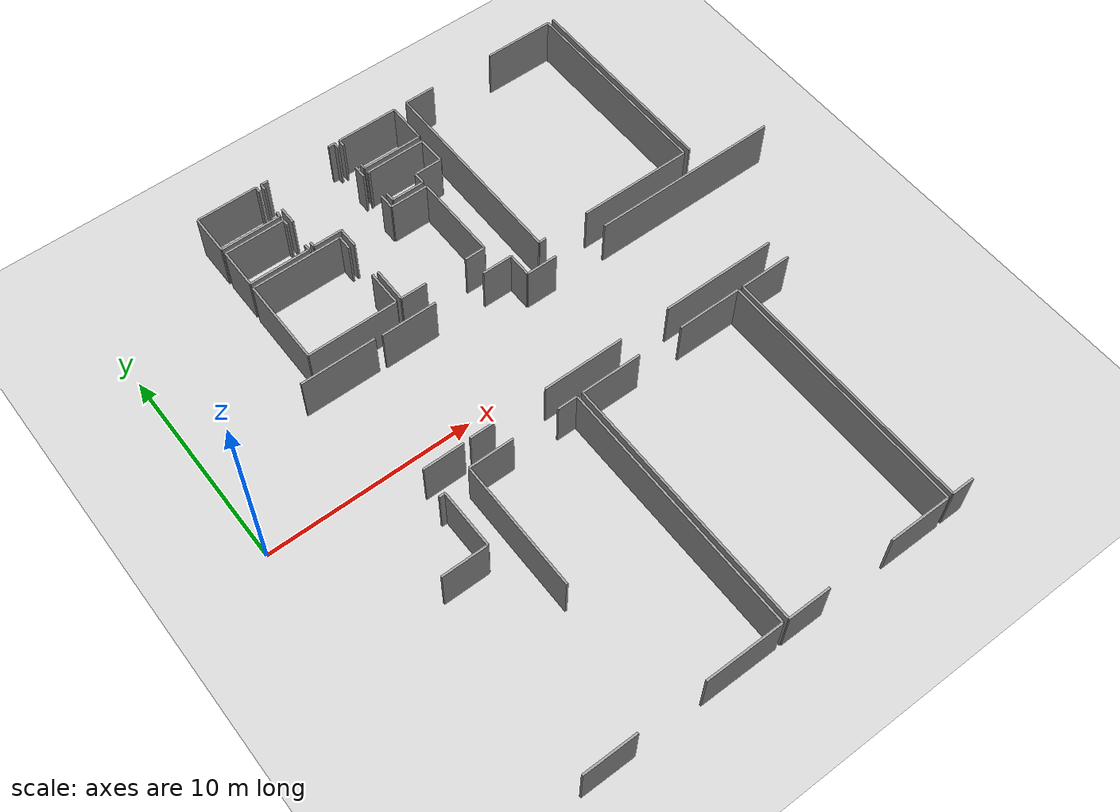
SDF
<sdf version="1.6">
 <world name="default">
  <model name="ground_plane">
   <static>1</static>
   <link name="link">
    <collision name="collision">
     <geometry><plane><normal>0 0 1</normal><size>100 100</size></plane></geometry>
     <surface><friction><ode><mu>100</mu><mu2>50</mu2></ode></friction></surface>
    </collision>
    <visual name="visual">
     <cast_shadows>0</cast_shadows>
     <geometry><plane><normal>0 0 1</normal><size>100 100</size></plane></geometry>
     <material>
      <script><uri>file://media/materials/scripts/gazebo.material</uri><name>Gazebo/Grey</name></script>
     </material>
    </visual>
   </link>
  </model>
  <model name="50056459">
   <static>1</static>
   <link name="Wall_125">
    <collision name="Wall_125_Collision">
     <geometry><box><size>1.97142300558 0.1 2.5</size></box></geometry>
     <pose>0.985711502791 0 1.25 0 0 0</pose>
    </collision>
    <visual name="Wall_125_Visual">
     <pose>0.985711502791 0 1.25 0 0 0</pose>
     <geometry><box><size>1.97142300558 0.1 2.5</size></box></geometry>
     <material>
      <script><uri>file://media/materials/scripts/gazebo.material</uri><name>Gazebo/Grey</name></script>
      <ambient>1 1 1 1</ambient>
     </material>
    </visual>
    <pose>63.5869125158 -16.9390261462 0 0 0 3.14159265359</pose>
   </link>
   <link name="Wall_138">
    <collision name="Wall_138_Collision">
     <geometry><box><size>3.64691234638 0.1 2.5</size></box></geometry>
     <pose>1.82345617319 0 1.25 0 0 0</pose>
    </collision>
    <visual name="Wall_138_Visual">
     <pose>1.82345617319 0 1.25 0 0 0</pose>
     <geometry><box><size>3.64691234638 0.1 2.5</size></box></geometry>
     <material>
      <script><uri>file://media/materials/scripts/gazebo.material</uri><name>Gazebo/Grey</name></script>
      <ambient>1 1 1 1</ambient>
     </material>
    </visual>
    <pose>59.9410165415 -10.7340747203 0 0 0 0.0</pose>
   </link>
   <link name="Wall_150">
    <collision name="Wall_150_Collision">
     <geometry><box><size>2.20383341662 0.1 2.5</size></box></geometry>
     <pose>1.10191670831 0 1.25 0 0 0</pose>
    </collision>
    <visual name="Wall_150_Visual">
     <pose>1.10191670831 0 1.25 0 0 0</pose>
     <geometry><box><size>2.20383341662 0.1 2.5</size></box></geometry>
     <material>
      <script><uri>file://media/materials/scripts/gazebo.material</uri><name>Gazebo/Grey</name></script>
      <ambient>1 1 1 1</ambient>
     </material>
    </visual>
    <pose>61.7030669027 -21.0998839642 0 0 0 3.14159265359</pose>
   </link>
   <link name="Wall_153">
    <collision name="Wall_153_Collision">
     <geometry><box><size>0.289496641737 0.1 2.5</size></box></geometry>
     <pose>0.144748320869 0 1.25 0 0 0</pose>
    </collision>
    <visual name="Wall_153_Visual">
     <pose>0.144748320869 0 1.25 0 0 0</pose>
     <geometry><box><size>0.289496641737 0.1 2.5</size></box></geometry>
     <material>
      <script><uri>file://media/materials/scripts/gazebo.material</uri><name>Gazebo/Grey</name></script>
      <ambient>1 1 1 1</ambient>
     </material>
    </visual>
    <pose>61.4039147264 -18.297746195 0 0 0 0.0</pose>
   </link>
   <link name="Wall_154">
    <collision name="Wall_154_Collision">
     <geometry><box><size>2.80215440458 0.1 2.5</size></box></geometry>
     <pose>1.40107720229 0 1.25 0 0 0</pose>
    </collision>
    <visual name="Wall_154_Visual">
     <pose>1.40107720229 0 1.25 0 0 0</pose>
     <geometry><box><size>2.80215440458 0.1 2.5</size></box></geometry>
     <material>
      <script><uri>file://media/materials/scripts/gazebo.material</uri><name>Gazebo/Grey</name></script>
      <ambient>1 1 1 1</ambient>
     </material>
    </visual>
    <pose>61.6934113681 -18.297746195 0 0 0 -1.56735056604</pose>
   </link>
   <link name="Wall_168">
    <collision name="Wall_168_Collision">
     <geometry><box><size>5.66136176916 0.1 2.5</size></box></geometry>
     <pose>2.83068088458 0 1.25 0 0 0</pose>
    </collision>
    <visual name="Wall_168_Visual">
     <pose>2.83068088458 0 1.25 0 0 0</pose>
     <geometry><box><size>5.66136176916 0.1 2.5</size></box></geometry>
     <material>
      <script><uri>file://media/materials/scripts/gazebo.material</uri><name>Gazebo/Grey</name></script>
      <ambient>1 1 1 1</ambient>
     </material>
    </visual>
    <pose>79.8093963597 -16.9166659609 0 0 0 3.14159265359</pose>
   </link>
   <link name="Wall_169">
    <collision name="Wall_169_Collision">
     <geometry><box><size>3.96249587099 0.1 2.5</size></box></geometry>
     <pose>1.98124793549 0 1.25 0 0 0</pose>
    </collision>
    <visual name="Wall_169_Visual">
     <pose>1.98124793549 0 1.25 0 0 0</pose>
     <geometry><box><size>3.96249587099 0.1 2.5</size></box></geometry>
     <material>
      <script><uri>file://media/materials/scripts/gazebo.material</uri><name>Gazebo/Grey</name></script>
      <ambient>1 1 1 1</ambient>
     </material>
    </visual>
    <pose>71.6458959743 -16.9166659609 0 0 0 3.14159265359</pose>
   </link>
   <link name="Wall_170">
    <collision name="Wall_170_Collision">
     <geometry><box><size>1.20287633293 0.1 2.5</size></box></geometry>
     <pose>0.601438166465 0 1.25 0 0 0</pose>
    </collision>
    <visual name="Wall_170_Visual">
     <pose>0.601438166465 0 1.25 0 0 0</pose>
     <geometry><box><size>1.20287633293 0.1 2.5</size></box></geometry>
     <material>
      <script><uri>file://media/materials/scripts/gazebo.material</uri><name>Gazebo/Grey</name></script>
      <ambient>1 1 1 1</ambient>
     </material>
    </visual>
    <pose>65.1128257684 -16.9166659609 0 0 0 3.14159265359</pose>
   </link>
   <link name="Wall_171">
    <collision name="Wall_171_Collision">
     <geometry><box><size>2.7065987956 0.1 2.5</size></box></geometry>
     <pose>1.3532993978 0 1.25 0 0 0</pose>
    </collision>
    <visual name="Wall_171_Visual">
     <pose>1.3532993978 0 1.25 0 0 0</pose>
     <geometry><box><size>2.7065987956 0.1 2.5</size></box></geometry>
     <material>
      <script><uri>file://media/materials/scripts/gazebo.material</uri><name>Gazebo/Grey</name></script>
      <ambient>1 1 1 1</ambient>
     </material>
    </visual>
    <pose>63.9099494355 -10.7887894162 0 0 0 0.0</pose>
   </link>
   <link name="Wall_172">
    <collision name="Wall_172_Collision">
     <geometry><box><size>1.48136227735 0.1 2.5</size></box></geometry>
     <pose>0.740681138675 0 1.25 0 0 0</pose>
    </collision>
    <visual name="Wall_172_Visual">
     <pose>0.740681138675 0 1.25 0 0 0</pose>
     <geometry><box><size>1.48136227735 0.1 2.5</size></box></geometry>
     <material>
      <script><uri>file://media/materials/scripts/gazebo.material</uri><name>Gazebo/Grey</name></script>
      <ambient>1 1 1 1</ambient>
     </material>
    </visual>
    <pose>69.1002227549 -10.7887894162 0 0 0 0.0</pose>
   </link>
   <link name="Wall_173">
    <collision name="Wall_173_Collision">
     <geometry><box><size>1.16035810176 0.1 2.5</size></box></geometry>
     <pose>0.580179050878 0 1.25 0 0 0</pose>
    </collision>
    <visual name="Wall_173_Visual">
     <pose>0.580179050878 0 1.25 0 0 0</pose>
     <geometry><box><size>1.16035810176 0.1 2.5</size></box></geometry>
     <material>
      <script><uri>file://media/materials/scripts/gazebo.material</uri><name>Gazebo/Grey</name></script>
      <ambient>1 1 1 1</ambient>
     </material>
    </visual>
    <pose>70.5815850322 -10.7887894162 0 0 0 -1.57079632679</pose>
   </link>
   <link name="Wall_174">
    <collision name="Wall_174_Collision">
     <geometry><box><size>1.51473315999 0.1 2.5</size></box></geometry>
     <pose>0.757366579993 0 1.25 0 0 0</pose>
    </collision>
    <visual name="Wall_174_Visual">
     <pose>0.757366579993 0 1.25 0 0 0</pose>
     <geometry><box><size>1.51473315999 0.1 2.5</size></box></geometry>
     <material>
      <script><uri>file://media/materials/scripts/gazebo.material</uri><name>Gazebo/Grey</name></script>
      <ambient>1 1 1 1</ambient>
     </material>
    </visual>
    <pose>70.5815850322 -11.9491475179 0 0 0 0.0</pose>
   </link>
   <link name="Wall_175">
    <collision name="Wall_175_Collision">
     <geometry><box><size>9.24898574538 0.1 2.5</size></box></geometry>
     <pose>4.62449287269 0 1.25 0 0 0</pose>
    </collision>
    <visual name="Wall_175_Visual">
     <pose>4.62449287269 0 1.25 0 0 0</pose>
     <geometry><box><size>9.24898574538 0.1 2.5</size></box></geometry>
     <material>
      <script><uri>file://media/materials/scripts/gazebo.material</uri><name>Gazebo/Grey</name></script>
      <ambient>1 1 1 1</ambient>
     </material>
    </visual>
    <pose>74.7465083385 -11.9491475179 0 0 0 0.0</pose>
   </link>
   <link name="Wall_188">
    <collision name="Wall_188_Collision">
     <geometry><box><size>1.00722471139 0.1 2.5</size></box></geometry>
     <pose>0.503612355696 0 1.25 0 0 0</pose>
    </collision>
    <visual name="Wall_188_Visual">
     <pose>0.503612355696 0 1.25 0 0 0</pose>
     <geometry><box><size>1.00722471139 0.1 2.5</size></box></geometry>
     <material>
      <script><uri>file://media/materials/scripts/gazebo.material</uri><name>Gazebo/Grey</name></script>
      <ambient>1 1 1 1</ambient>
     </material>
    </visual>
    <pose>69.9317844952 -9.74616107803 0 0 0 3.14159265359</pose>
   </link>
   <link name="Wall_189">
    <collision name="Wall_189_Collision">
     <geometry><box><size>1.27605512124 0.1 2.5</size></box></geometry>
     <pose>0.638027560622 0 1.25 0 0 0</pose>
    </collision>
    <visual name="Wall_189_Visual">
     <pose>0.638027560622 0 1.25 0 0 0</pose>
     <geometry><box><size>1.27605512124 0.1 2.5</size></box></geometry>
     <material>
      <script><uri>file://media/materials/scripts/gazebo.material</uri><name>Gazebo/Grey</name></script>
      <ambient>1 1 1 1</ambient>
     </material>
    </visual>
    <pose>66.8726739902 -9.74616107803 0 0 0 3.14159265359</pose>
   </link>
   <link name="Wall_190">
    <collision name="Wall_190_Collision">
     <geometry><box><size>1.71919333938 0.1 2.5</size></box></geometry>
     <pose>0.859596669688 0 1.25 0 0 0</pose>
    </collision>
    <visual name="Wall_190_Visual">
     <pose>0.859596669688 0 1.25 0 0 0</pose>
     <geometry><box><size>1.71919333938 0.1 2.5</size></box></geometry>
     <material>
      <script><uri>file://media/materials/scripts/gazebo.material</uri><name>Gazebo/Grey</name></script>
      <ambient>1 1 1 1</ambient>
     </material>
    </visual>
    <pose>65.5966188689 -9.74616107803 0 0 0 1.57079632679</pose>
   </link>
   <link name="Wall_191">
    <collision name="Wall_191_Collision">
     <geometry><box><size>0.996044618733 0.1 2.5</size></box></geometry>
     <pose>0.498022309367 0 1.25 0 0 0</pose>
    </collision>
    <visual name="Wall_191_Visual">
     <pose>0.498022309367 0 1.25 0 0 0</pose>
     <geometry><box><size>0.996044618733 0.1 2.5</size></box></geometry>
     <material>
      <script><uri>file://media/materials/scripts/gazebo.material</uri><name>Gazebo/Grey</name></script>
      <ambient>1 1 1 1</ambient>
     </material>
    </visual>
    <pose>65.5966188689 -6.25424547079 0 0 0 1.57079632679</pose>
   </link>
   <link name="Wall_192">
    <collision name="Wall_192_Collision">
     <geometry><box><size>1.42258209322 0.1 2.5</size></box></geometry>
     <pose>0.711291046609 0 1.25 0 0 0</pose>
    </collision>
    <visual name="Wall_192_Visual">
     <pose>0.711291046609 0 1.25 0 0 0</pose>
     <geometry><box><size>1.42258209322 0.1 2.5</size></box></geometry>
     <material>
      <script><uri>file://media/materials/scripts/gazebo.material</uri><name>Gazebo/Grey</name></script>
      <ambient>1 1 1 1</ambient>
     </material>
    </visual>
    <pose>65.5966188689 -5.25820085206 0 0 0 3.14159265359</pose>
   </link>
   <link name="Wall_193">
    <collision name="Wall_193_Collision">
     <geometry><box><size>0.256295154446 0.1 2.5</size></box></geometry>
     <pose>0.128147577223 0 1.25 0 0 0</pose>
    </collision>
    <visual name="Wall_193_Visual">
     <pose>0.128147577223 0 1.25 0 0 0</pose>
     <geometry><box><size>0.256295154446 0.1 2.5</size></box></geometry>
     <material>
      <script><uri>file://media/materials/scripts/gazebo.material</uri><name>Gazebo/Grey</name></script>
      <ambient>1 1 1 1</ambient>
     </material>
    </visual>
    <pose>64.1740367757 -5.25820085206 0 0 0 1.57079632679</pose>
   </link>
   <link name="Wall_194">
    <collision name="Wall_194_Collision">
     <geometry><box><size>0.867473553152 0.1 2.5</size></box></geometry>
     <pose>0.433736776576 0 1.25 0 0 0</pose>
    </collision>
    <visual name="Wall_194_Visual">
     <pose>0.433736776576 0 1.25 0 0 0</pose>
     <geometry><box><size>0.867473553152 0.1 2.5</size></box></geometry>
     <material>
      <script><uri>file://media/materials/scripts/gazebo.material</uri><name>Gazebo/Grey</name></script>
      <ambient>1 1 1 1</ambient>
     </material>
    </visual>
    <pose>64.1740367757 -3.62218062625 0 0 0 1.57079632679</pose>
   </link>
   <link name="Wall_195">
    <collision name="Wall_195_Collision">
     <geometry><box><size>0.322189942998 0.1 2.5</size></box></geometry>
     <pose>0.161094971499 0 1.25 0 0 0</pose>
    </collision>
    <visual name="Wall_195_Visual">
     <pose>0.161094971499 0 1.25 0 0 0</pose>
     <geometry><box><size>0.322189942998 0.1 2.5</size></box></geometry>
     <material>
      <script><uri>file://media/materials/scripts/gazebo.material</uri><name>Gazebo/Grey</name></script>
      <ambient>1 1 1 1</ambient>
     </material>
    </visual>
    <pose>64.1740367757 -1.37684535052 0 0 0 1.57079632679</pose>
   </link>
   <link name="Wall_196">
    <collision name="Wall_196_Collision">
     <geometry><box><size>0.336757942524 0.1 2.5</size></box></geometry>
     <pose>0.168378971262 0 1.25 0 0 0</pose>
    </collision>
    <visual name="Wall_196_Visual">
     <pose>0.168378971262 0 1.25 0 0 0</pose>
     <geometry><box><size>0.336757942524 0.1 2.5</size></box></geometry>
     <material>
      <script><uri>file://media/materials/scripts/gazebo.material</uri><name>Gazebo/Grey</name></script>
      <ambient>1 1 1 1</ambient>
     </material>
    </visual>
    <pose>64.1740367757 -1.05465540752 0 0 0 0.0</pose>
   </link>
   <link name="Wall_197">
    <collision name="Wall_197_Collision">
     <geometry><box><size>0.329473942761 0.1 2.5</size></box></geometry>
     <pose>0.164736971381 0 1.25 0 0 0</pose>
    </collision>
    <visual name="Wall_197_Visual">
     <pose>0.164736971381 0 1.25 0 0 0</pose>
     <geometry><box><size>0.329473942761 0.1 2.5</size></box></geometry>
     <material>
      <script><uri>file://media/materials/scripts/gazebo.material</uri><name>Gazebo/Grey</name></script>
      <ambient>1 1 1 1</ambient>
     </material>
    </visual>
    <pose>67.7038969399 -1.05465540752 0 0 0 0.0</pose>
   </link>
   <link name="Wall_198">
    <collision name="Wall_198_Collision">
     <geometry><box><size>0.307621943473 0.1 2.5</size></box></geometry>
     <pose>0.153810971736 0 1.25 0 0 0</pose>
    </collision>
    <visual name="Wall_198_Visual">
     <pose>0.153810971736 0 1.25 0 0 0</pose>
     <geometry><box><size>0.307621943473 0.1 2.5</size></box></geometry>
     <material>
      <script><uri>file://media/materials/scripts/gazebo.material</uri><name>Gazebo/Grey</name></script>
      <ambient>1 1 1 1</ambient>
     </material>
    </visual>
    <pose>68.0333708826 -1.05465540752 0 0 0 -1.57079632679</pose>
   </link>
   <link name="Wall_199">
    <collision name="Wall_199_Collision">
     <geometry><box><size>0.648445374237 0.1 2.5</size></box></geometry>
     <pose>0.324222687118 0 1.25 0 0 0</pose>
    </collision>
    <visual name="Wall_199_Visual">
     <pose>0.324222687118 0 1.25 0 0 0</pose>
     <geometry><box><size>0.648445374237 0.1 2.5</size></box></geometry>
     <material>
      <script><uri>file://media/materials/scripts/gazebo.material</uri><name>Gazebo/Grey</name></script>
      <ambient>1 1 1 1</ambient>
     </material>
    </visual>
    <pose>68.0333708826 -2.75487646845 0 0 0 -1.57079632679</pose>
   </link>
   <link name="Wall_200">
    <collision name="Wall_200_Collision">
     <geometry><box><size>0.758552347396 0.1 2.5</size></box></geometry>
     <pose>0.379276173698 0 1.25 0 0 0</pose>
    </collision>
    <visual name="Wall_200_Visual">
     <pose>0.379276173698 0 1.25 0 0 0</pose>
     <geometry><box><size>0.758552347396 0.1 2.5</size></box></geometry>
     <material>
      <script><uri>file://media/materials/scripts/gazebo.material</uri><name>Gazebo/Grey</name></script>
      <ambient>1 1 1 1</ambient>
     </material>
    </visual>
    <pose>68.0333708826 -4.76814012383 0 0 0 -1.57079632679</pose>
   </link>
   <link name="Wall_201">
    <collision name="Wall_201_Collision">
     <geometry><box><size>1.88215165965 0.1 2.5</size></box></geometry>
     <pose>0.941075829825 0 1.25 0 0 0</pose>
    </collision>
    <visual name="Wall_201_Visual">
     <pose>0.941075829825 0 1.25 0 0 0</pose>
     <geometry><box><size>1.88215165965 0.1 2.5</size></box></geometry>
     <material>
      <script><uri>file://media/materials/scripts/gazebo.material</uri><name>Gazebo/Grey</name></script>
      <ambient>1 1 1 1</ambient>
     </material>
    </visual>
    <pose>68.0333708826 -5.52669247122 0 0 0 0.0</pose>
   </link>
   <link name="Wall_202">
    <collision name="Wall_202_Collision">
     <geometry><box><size>4.21949994371 0.1 2.5</size></box></geometry>
     <pose>2.10974997185 0 1.25 0 0 0</pose>
    </collision>
    <visual name="Wall_202_Visual">
     <pose>2.10974997185 0 1.25 0 0 0</pose>
     <geometry><box><size>4.21949994371 0.1 2.5</size></box></geometry>
     <material>
      <script><uri>file://media/materials/scripts/gazebo.material</uri><name>Gazebo/Grey</name></script>
      <ambient>1 1 1 1</ambient>
     </material>
    </visual>
    <pose>69.9155225423 -5.52669247122 0 0 0 -1.56694231721</pose>
   </link>
   <link name="Wall_203">
    <collision name="Wall_203_Collision">
     <geometry><box><size>4.38733939204 0.1 2.5</size></box></geometry>
     <pose>2.19366969602 0 1.25 0 0 0</pose>
    </collision>
    <visual name="Wall_203_Visual">
     <pose>2.19366969602 0 1.25 0 0 0</pose>
     <geometry><box><size>4.38733939204 0.1 2.5</size></box></geometry>
     <material>
      <script><uri>file://media/materials/scripts/gazebo.material</uri><name>Gazebo/Grey</name></script>
      <ambient>1 1 1 1</ambient>
     </material>
    </visual>
    <pose>65.3281272498 -9.75920451947 0 0 0 3.14159265359</pose>
   </link>
   <link name="Wall_204">
    <collision name="Wall_204_Collision">
     <geometry><box><size>4.21794404872 0.1 2.5</size></box></geometry>
     <pose>2.10897202436 0 1.25 0 0 0</pose>
    </collision>
    <visual name="Wall_204_Visual">
     <pose>2.10897202436 0 1.25 0 0 0</pose>
     <geometry><box><size>4.21794404872 0.1 2.5</size></box></geometry>
     <material>
      <script><uri>file://media/materials/scripts/gazebo.material</uri><name>Gazebo/Grey</name></script>
      <ambient>1 1 1 1</ambient>
     </material>
    </visual>
    <pose>60.9407878577 -9.75920451947 0 0 0 1.57079632679</pose>
   </link>
   <link name="Wall_205">
    <collision name="Wall_205_Collision">
     <geometry><box><size>4.38733939204 0.1 2.5</size></box></geometry>
     <pose>2.19366969602 0 1.25 0 0 0</pose>
    </collision>
    <visual name="Wall_205_Visual">
     <pose>2.19366969602 0 1.25 0 0 0</pose>
     <geometry><box><size>4.38733939204 0.1 2.5</size></box></geometry>
     <material>
      <script><uri>file://media/materials/scripts/gazebo.material</uri><name>Gazebo/Grey</name></script>
      <ambient>1 1 1 1</ambient>
     </material>
    </visual>
    <pose>60.9407878577 -5.54126047075 0 0 0 0.0</pose>
   </link>
   <link name="Wall_206">
    <collision name="Wall_206_Collision">
     <geometry><box><size>0.711460441952 0.1 2.5</size></box></geometry>
     <pose>0.355730220976 0 1.25 0 0 0</pose>
    </collision>
    <visual name="Wall_206_Visual">
     <pose>0.355730220976 0 1.25 0 0 0</pose>
     <geometry><box><size>0.711460441952 0.1 2.5</size></box></geometry>
     <material>
      <script><uri>file://media/materials/scripts/gazebo.material</uri><name>Gazebo/Grey</name></script>
      <ambient>1 1 1 1</ambient>
     </material>
    </visual>
    <pose>65.3281272498 -5.54126047075 0 0 0 -1.57079632679</pose>
   </link>
   <link name="Wall_207">
    <collision name="Wall_207_Collision">
     <geometry><box><size>1.75629091956 0.1 2.5</size></box></geometry>
     <pose>0.878145459781 0 1.25 0 0 0</pose>
    </collision>
    <visual name="Wall_207_Visual">
     <pose>0.878145459781 0 1.25 0 0 0</pose>
     <geometry><box><size>1.75629091956 0.1 2.5</size></box></geometry>
     <material>
      <script><uri>file://media/materials/scripts/gazebo.material</uri><name>Gazebo/Grey</name></script>
      <ambient>1 1 1 1</ambient>
     </material>
    </visual>
    <pose>65.3281272498 -8.00291359991 0 0 0 -1.57079632679</pose>
   </link>
   <link name="Wall_208">
    <collision name="Wall_208_Collision">
     <geometry><box><size>2.95476297357 0.1 2.5</size></box></geometry>
     <pose>1.47738148678 0 1.25 0 0 0</pose>
    </collision>
    <visual name="Wall_208_Visual">
     <pose>1.47738148678 0 1.25 0 0 0</pose>
     <geometry><box><size>2.95476297357 0.1 2.5</size></box></geometry>
     <material>
      <script><uri>file://media/materials/scripts/gazebo.material</uri><name>Gazebo/Grey</name></script>
      <ambient>1 1 1 1</ambient>
     </material>
    </visual>
    <pose>63.9160476678 -5.27666494448 0 0 0 3.14159265359</pose>
   </link>
   <link name="Wall_209">
    <collision name="Wall_209_Collision">
     <geometry><box><size>1.98040095878 0.1 2.5</size></box></geometry>
     <pose>0.990200479389 0 1.25 0 0 0</pose>
    </collision>
    <visual name="Wall_209_Visual">
     <pose>0.990200479389 0 1.25 0 0 0</pose>
     <geometry><box><size>1.98040095878 0.1 2.5</size></box></geometry>
     <material>
      <script><uri>file://media/materials/scripts/gazebo.material</uri><name>Gazebo/Grey</name></script>
      <ambient>1 1 1 1</ambient>
     </material>
    </visual>
    <pose>60.9612846943 -5.27666494448 0 0 0 1.57079632679</pose>
   </link>
   <link name="Wall_210">
    <collision name="Wall_210_Collision">
     <geometry><box><size>2.94205832282 0.1 2.5</size></box></geometry>
     <pose>1.47102916141 0 1.25 0 0 0</pose>
    </collision>
    <visual name="Wall_210_Visual">
     <pose>1.47102916141 0 1.25 0 0 0</pose>
     <geometry><box><size>2.94205832282 0.1 2.5</size></box></geometry>
     <material>
      <script><uri>file://media/materials/scripts/gazebo.material</uri><name>Gazebo/Grey</name></script>
      <ambient>1 1 1 1</ambient>
     </material>
    </visual>
    <pose>60.9612846943 -3.2962639857 0 0 0 0.0</pose>
   </link>
   <link name="Wall_211">
    <collision name="Wall_211_Collision">
     <geometry><box><size>0.305589199353 0.1 2.5</size></box></geometry>
     <pose>0.152794599676 0 1.25 0 0 0</pose>
    </collision>
    <visual name="Wall_211_Visual">
     <pose>0.152794599676 0 1.25 0 0 0</pose>
     <geometry><box><size>0.305589199353 0.1 2.5</size></box></geometry>
     <material>
      <script><uri>file://media/materials/scripts/gazebo.material</uri><name>Gazebo/Grey</name></script>
      <ambient>1 1 1 1</ambient>
     </material>
    </visual>
    <pose>63.9033430171 -3.2962639857 0 0 0 -1.57079632679</pose>
   </link>
   <link name="Wall_212">
    <collision name="Wall_212_Collision">
     <geometry><box><size>0.296883208514 0.1 2.5</size></box></geometry>
     <pose>0.148441604257 0 1.25 0 0 0</pose>
    </collision>
    <visual name="Wall_212_Visual">
     <pose>0.148441604257 0 1.25 0 0 0</pose>
     <geometry><box><size>0.296883208514 0.1 2.5</size></box></geometry>
     <material>
      <script><uri>file://media/materials/scripts/gazebo.material</uri><name>Gazebo/Grey</name></script>
      <ambient>1 1 1 1</ambient>
     </material>
    </visual>
    <pose>63.9033430171 -4.98005369832 0 0 0 -1.52798982509</pose>
   </link>
   <link name="Wall_213">
    <collision name="Wall_213_Collision">
     <geometry><box><size>2.95611813631 0.1 2.5</size></box></geometry>
     <pose>1.47805906816 0 1.25 0 0 0</pose>
    </collision>
    <visual name="Wall_213_Visual">
     <pose>1.47805906816 0 1.25 0 0 0</pose>
     <geometry><box><size>2.95611813631 0.1 2.5</size></box></geometry>
     <material>
      <script><uri>file://media/materials/scripts/gazebo.material</uri><name>Gazebo/Grey</name></script>
      <ambient>1 1 1 1</ambient>
     </material>
    </visual>
    <pose>63.895381436 -3.02421506433 0 0 0 3.14159265359</pose>
   </link>
   <link name="Wall_214">
    <collision name="Wall_214_Collision">
     <geometry><box><size>1.97904579603 0.1 2.5</size></box></geometry>
     <pose>0.989522898016 0 1.25 0 0 0</pose>
    </collision>
    <visual name="Wall_214_Visual">
     <pose>0.989522898016 0 1.25 0 0 0</pose>
     <geometry><box><size>1.97904579603 0.1 2.5</size></box></geometry>
     <material>
      <script><uri>file://media/materials/scripts/gazebo.material</uri><name>Gazebo/Grey</name></script>
      <ambient>1 1 1 1</ambient>
     </material>
    </visual>
    <pose>60.9392632997 -3.02421506433 0 0 0 1.57079632679</pose>
   </link>
   <link name="Wall_215">
    <collision name="Wall_215_Collision">
     <geometry><box><size>2.9728882753 0.1 2.5</size></box></geometry>
     <pose>1.48644413765 0 1.25 0 0 0</pose>
    </collision>
    <visual name="Wall_215_Visual">
     <pose>1.48644413765 0 1.25 0 0 0</pose>
     <geometry><box><size>2.9728882753 0.1 2.5</size></box></geometry>
     <material>
      <script><uri>file://media/materials/scripts/gazebo.material</uri><name>Gazebo/Grey</name></script>
      <ambient>1 1 1 1</ambient>
     </material>
    </visual>
    <pose>60.9392632997 -1.0451692683 0 0 0 0.0</pose>
   </link>
   <link name="Wall_216">
    <collision name="Wall_216_Collision">
     <geometry><box><size>0.303048269203 0.1 2.5</size></box></geometry>
     <pose>0.151524134602 0 1.25 0 0 0</pose>
    </collision>
    <visual name="Wall_216_Visual">
     <pose>0.151524134602 0 1.25 0 0 0</pose>
     <geometry><box><size>0.303048269203 0.1 2.5</size></box></geometry>
     <material>
      <script><uri>file://media/materials/scripts/gazebo.material</uri><name>Gazebo/Grey</name></script>
      <ambient>1 1 1 1</ambient>
     </material>
    </visual>
    <pose>63.912151575 -1.0451692683 0 0 0 -1.57079632679</pose>
   </link>
   <link name="Wall_217">
    <collision name="Wall_217_Collision">
     <geometry><box><size>0.290658420349 0.1 2.5</size></box></geometry>
     <pose>0.145329210174 0 1.25 0 0 0</pose>
    </collision>
    <visual name="Wall_217_Visual">
     <pose>0.145329210174 0 1.25 0 0 0</pose>
     <geometry><box><size>0.290658420349 0.1 2.5</size></box></geometry>
     <material>
      <script><uri>file://media/materials/scripts/gazebo.material</uri><name>Gazebo/Grey</name></script>
      <ambient>1 1 1 1</ambient>
     </material>
    </visual>
    <pose>63.912151575 -2.73404084122 0 0 0 -1.62852545583</pose>
   </link>
   <link name="Wall_218">
    <collision name="Wall_218_Collision">
     <geometry><box><size>2.98135804247 0.1 2.5</size></box></geometry>
     <pose>1.49067902123 0 1.25 0 0 0</pose>
    </collision>
    <visual name="Wall_218_Visual">
     <pose>1.49067902123 0 1.25 0 0 0</pose>
     <geometry><box><size>2.98135804247 0.1 2.5</size></box></geometry>
     <material>
      <script><uri>file://media/materials/scripts/gazebo.material</uri><name>Gazebo/Grey</name></script>
      <ambient>1 1 1 1</ambient>
     </material>
    </visual>
    <pose>71.2813571955 -3.03268483149 0 0 0 3.14159265359</pose>
   </link>
   <link name="Wall_219">
    <collision name="Wall_219_Collision">
     <geometry><box><size>0.269507991225 0.1 2.5</size></box></geometry>
     <pose>0.134753995613 0 1.25 0 0 0</pose>
    </collision>
    <visual name="Wall_219_Visual">
     <pose>0.134753995613 0 1.25 0 0 0</pose>
     <geometry><box><size>0.269507991225 0.1 2.5</size></box></geometry>
     <material>
      <script><uri>file://media/materials/scripts/gazebo.material</uri><name>Gazebo/Grey</name></script>
      <ambient>1 1 1 1</ambient>
     </material>
    </visual>
    <pose>68.299999153 -3.03268483149 0 0 0 1.57079632679</pose>
   </link>
   <link name="Wall_220">
    <collision name="Wall_220_Collision">
     <geometry><box><size>0.34421133763 0.1 2.5</size></box></geometry>
     <pose>0.172105668815 0 1.25 0 0 0</pose>
    </collision>
    <visual name="Wall_220_Visual">
     <pose>0.172105668815 0 1.25 0 0 0</pose>
     <geometry><box><size>0.34421133763 0.1 2.5</size></box></geometry>
     <material>
      <script><uri>file://media/materials/scripts/gazebo.material</uri><name>Gazebo/Grey</name></script>
      <ambient>1 1 1 1</ambient>
     </material>
    </visual>
    <pose>68.299999153 -1.39158274539 0 0 0 1.57079632679</pose>
   </link>
   <link name="Wall_221">
    <collision name="Wall_221_Collision">
     <geometry><box><size>2.99236873978 0.1 2.5</size></box></geometry>
     <pose>1.49618436989 0 1.25 0 0 0</pose>
    </collision>
    <visual name="Wall_221_Visual">
     <pose>1.49618436989 0 1.25 0 0 0</pose>
     <geometry><box><size>2.99236873978 0.1 2.5</size></box></geometry>
     <material>
      <script><uri>file://media/materials/scripts/gazebo.material</uri><name>Gazebo/Grey</name></script>
      <ambient>1 1 1 1</ambient>
     </material>
    </visual>
    <pose>68.299999153 -1.04737140776 0 0 0 0.0</pose>
   </link>
   <link name="Wall_222">
    <collision name="Wall_222_Collision">
     <geometry><box><size>1.98534395658 0.1 2.5</size></box></geometry>
     <pose>0.992671978288 0 1.25 0 0 0</pose>
    </collision>
    <visual name="Wall_222_Visual">
     <pose>0.992671978288 0 1.25 0 0 0</pose>
     <geometry><box><size>1.98534395658 0.1 2.5</size></box></geometry>
     <material>
      <script><uri>file://media/materials/scripts/gazebo.material</uri><name>Gazebo/Grey</name></script>
      <ambient>1 1 1 1</ambient>
     </material>
    </visual>
    <pose>71.2923678928 -1.04737140776 0 0 0 -1.57634234502</pose>
   </link>
   <link name="Wall_223">
    <collision name="Wall_223_Collision">
     <geometry><box><size>1.35634851398 0.1 2.5</size></box></geometry>
     <pose>0.67817425699 0 1.25 0 0 0</pose>
    </collision>
    <visual name="Wall_223_Visual">
     <pose>0.67817425699 0 1.25 0 0 0</pose>
     <geometry><box><size>1.35634851398 0.1 2.5</size></box></geometry>
     <material>
      <script><uri>file://media/materials/scripts/gazebo.material</uri><name>Gazebo/Grey</name></script>
      <ambient>1 1 1 1</ambient>
     </material>
    </visual>
    <pose>71.2649258472 -4.67819119652 0 0 0 3.14159265359</pose>
   </link>
   <link name="Wall_224">
    <collision name="Wall_224_Collision">
     <geometry><box><size>0.566627423412 0.1 2.5</size></box></geometry>
     <pose>0.283313711706 0 1.25 0 0 0</pose>
    </collision>
    <visual name="Wall_224_Visual">
     <pose>0.283313711706 0 1.25 0 0 0</pose>
     <geometry><box><size>0.566627423412 0.1 2.5</size></box></geometry>
     <material>
      <script><uri>file://media/materials/scripts/gazebo.material</uri><name>Gazebo/Grey</name></script>
      <ambient>1 1 1 1</ambient>
     </material>
    </visual>
    <pose>69.9085773332 -4.67819119652 0 0 0 -1.57079632679</pose>
   </link>
   <link name="Wall_225">
    <collision name="Wall_225_Collision">
     <geometry><box><size>1.61111911034 0.1 2.5</size></box></geometry>
     <pose>0.805559555168 0 1.25 0 0 0</pose>
    </collision>
    <visual name="Wall_225_Visual">
     <pose>0.805559555168 0 1.25 0 0 0</pose>
     <geometry><box><size>1.61111911034 0.1 2.5</size></box></geometry>
     <material>
      <script><uri>file://media/materials/scripts/gazebo.material</uri><name>Gazebo/Grey</name></script>
      <ambient>1 1 1 1</ambient>
     </material>
    </visual>
    <pose>69.9085773332 -5.24481861994 0 0 0 3.14159265359</pose>
   </link>
   <link name="Wall_226">
    <collision name="Wall_226_Collision">
     <geometry><box><size>0.44567914828 0.1 2.5</size></box></geometry>
     <pose>0.22283957414 0 1.25 0 0 0</pose>
    </collision>
    <visual name="Wall_226_Visual">
     <pose>0.22283957414 0 1.25 0 0 0</pose>
     <geometry><box><size>0.44567914828 0.1 2.5</size></box></geometry>
     <material>
      <script><uri>file://media/materials/scripts/gazebo.material</uri><name>Gazebo/Grey</name></script>
      <ambient>1 1 1 1</ambient>
     </material>
    </visual>
    <pose>68.2974582229 -5.24481861994 0 0 0 1.57079632679</pose>
   </link>
   <link name="Wall_227">
    <collision name="Wall_227_Collision">
     <geometry><box><size>0.101129019963 0.1 2.5</size></box></geometry>
     <pose>0.0505645099816 0 1.25 0 0 0</pose>
    </collision>
    <visual name="Wall_227_Visual">
     <pose>0.0505645099816 0 1.25 0 0 0</pose>
     <geometry><box><size>0.101129019963 0.1 2.5</size></box></geometry>
     <material>
      <script><uri>file://media/materials/scripts/gazebo.material</uri><name>Gazebo/Grey</name></script>
      <ambient>1 1 1 1</ambient>
     </material>
    </visual>
    <pose>68.2974582229 -3.42009198167 0 0 0 1.57079632679</pose>
   </link>
   <link name="Wall_228">
    <collision name="Wall_228_Collision">
     <geometry><box><size>2.93341916031 0.1 2.5</size></box></geometry>
     <pose>1.46670958015 0 1.25 0 0 0</pose>
    </collision>
    <visual name="Wall_228_Visual">
     <pose>1.46670958015 0 1.25 0 0 0</pose>
     <geometry><box><size>2.93341916031 0.1 2.5</size></box></geometry>
     <material>
      <script><uri>file://media/materials/scripts/gazebo.material</uri><name>Gazebo/Grey</name></script>
      <ambient>1 1 1 1</ambient>
     </material>
    </visual>
    <pose>68.2974582229 -3.31896296171 0 0 0 0.0</pose>
   </link>
   <link name="Wall_229">
    <collision name="Wall_229_Collision">
     <geometry><box><size>1.3596546224 0.1 2.5</size></box></geometry>
     <pose>0.679827311201 0 1.25 0 0 0</pose>
    </collision>
    <visual name="Wall_229_Visual">
     <pose>0.679827311201 0 1.25 0 0 0</pose>
     <geometry><box><size>1.3596546224 0.1 2.5</size></box></geometry>
     <material>
      <script><uri>file://media/materials/scripts/gazebo.material</uri><name>Gazebo/Grey</name></script>
      <ambient>1 1 1 1</ambient>
     </material>
    </visual>
    <pose>71.2308773832 -3.31896296171 0 0 0 -1.54575171393</pose>
   </link>
   <link name="Wall_230">
    <collision name="Wall_230_Collision">
     <geometry><box><size>5.57175163255 0.1 2.5</size></box></geometry>
     <pose>2.78587581627 0 1.25 0 0 0</pose>
    </collision>
    <visual name="Wall_230_Visual">
     <pose>2.78587581627 0 1.25 0 0 0</pose>
     <geometry><box><size>5.57175163255 0.1 2.5</size></box></geometry>
     <material>
      <script><uri>file://media/materials/scripts/gazebo.material</uri><name>Gazebo/Grey</name></script>
      <ambient>1 1 1 1</ambient>
     </material>
    </visual>
    <pose>80.1168489078 -10.9361633649 0 0 0 3.14159265359</pose>
   </link>
   <link name="Wall_231">
    <collision name="Wall_231_Collision">
     <geometry><box><size>0.358779337156 0.1 2.5</size></box></geometry>
     <pose>0.179389668578 0 1.25 0 0 0</pose>
    </collision>
    <visual name="Wall_231_Visual">
     <pose>0.179389668578 0 1.25 0 0 0</pose>
     <geometry><box><size>0.358779337156 0.1 2.5</size></box></geometry>
     <material>
      <script><uri>file://media/materials/scripts/gazebo.material</uri><name>Gazebo/Grey</name></script>
      <ambient>1 1 1 1</ambient>
     </material>
    </visual>
    <pose>72.3292367893 -10.9361633649 0 0 0 3.14159265359</pose>
   </link>
   <link name="Wall_232">
    <collision name="Wall_232_Collision">
     <geometry><box><size>9.90234358457 0.1 2.5</size></box></geometry>
     <pose>4.95117179229 0 1.25 0 0 0</pose>
    </collision>
    <visual name="Wall_232_Visual">
     <pose>4.95117179229 0 1.25 0 0 0</pose>
     <geometry><box><size>9.90234358457 0.1 2.5</size></box></geometry>
     <material>
      <script><uri>file://media/materials/scripts/gazebo.material</uri><name>Gazebo/Grey</name></script>
      <ambient>1 1 1 1</ambient>
     </material>
    </visual>
    <pose>71.9704574521 -10.9361633649 0 0 0 1.57079632679</pose>
   </link>
   <link name="Wall_233">
    <collision name="Wall_233_Collision">
     <geometry><box><size>1.48475018422 0.1 2.5</size></box></geometry>
     <pose>0.742375092109 0 1.25 0 0 0</pose>
    </collision>
    <visual name="Wall_233_Visual">
     <pose>0.742375092109 0 1.25 0 0 0</pose>
     <geometry><box><size>1.48475018422 0.1 2.5</size></box></geometry>
     <material>
      <script><uri>file://media/materials/scripts/gazebo.material</uri><name>Gazebo/Grey</name></script>
      <ambient>1 1 1 1</ambient>
     </material>
    </visual>
    <pose>71.9704574521 -1.03381978029 0 0 0 0.0</pose>
   </link>
   <link name="Wall_234">
    <collision name="Wall_234_Collision">
     <geometry><box><size>3.4346599812 0.1 2.5</size></box></geometry>
     <pose>1.7173299906 0 1.25 0 0 0</pose>
    </collision>
    <visual name="Wall_234_Visual">
     <pose>1.7173299906 0 1.25 0 0 0</pose>
     <geometry><box><size>3.4346599812 0.1 2.5</size></box></geometry>
     <material>
      <script><uri>file://media/materials/scripts/gazebo.material</uri><name>Gazebo/Grey</name></script>
      <ambient>1 1 1 1</ambient>
     </material>
    </visual>
    <pose>76.6750743222 -1.03381978029 0 0 0 0.0</pose>
   </link>
   <link name="Wall_235">
    <collision name="Wall_235_Collision">
     <geometry><box><size>9.90234614041 0.1 2.5</size></box></geometry>
     <pose>4.95117307021 0 1.25 0 0 0</pose>
    </collision>
    <visual name="Wall_235_Visual">
     <pose>4.95117307021 0 1.25 0 0 0</pose>
     <geometry><box><size>9.90234614041 0.1 2.5</size></box></geometry>
     <material>
      <script><uri>file://media/materials/scripts/gazebo.material</uri><name>Gazebo/Grey</name></script>
      <ambient>1 1 1 1</ambient>
     </material>
    </visual>
    <pose>80.1097343034 -1.03381978029 0 0 0 -1.57007785009</pose>
   </link>
   <link name="Wall_238">
    <collision name="Wall_238_Collision">
     <geometry><box><size>9.92521195592 0.1 2.5</size></box></geometry>
     <pose>4.96260597796 0 1.25 0 0 0</pose>
    </collision>
    <visual name="Wall_238_Visual">
     <pose>4.96260597796 0 1.25 0 0 0</pose>
     <geometry><box><size>9.92521195592 0.1 2.5</size></box></geometry>
     <material>
      <script><uri>file://media/materials/scripts/gazebo.material</uri><name>Gazebo/Grey</name></script>
      <ambient>1 1 1 1</ambient>
     </material>
    </visual>
    <pose>80.424301456 -10.9449719227 0 0 0 1.57079632679</pose>
   </link>
   <link name="Wall_285">
    <collision name="Wall_285_Collision">
     <geometry><box><size>1.10276368503 0.1 2.5</size></box></geometry>
     <pose>0.551381842513 0 1.25 0 0 0</pose>
    </collision>
    <visual name="Wall_285_Visual">
     <pose>0.551381842513 0 1.25 0 0 0</pose>
     <geometry><box><size>1.10276368503 0.1 2.5</size></box></geometry>
     <material>
      <script><uri>file://media/materials/scripts/gazebo.material</uri><name>Gazebo/Grey</name></script>
      <ambient>1 1 1 1</ambient>
     </material>
    </visual>
    <pose>78.4896372399 -30.2900895254 0 0 0 3.14159265359</pose>
   </link>
   <link name="Wall_286">
    <collision name="Wall_286_Collision">
     <geometry><box><size>12.3211396919 0.1 2.5</size></box></geometry>
     <pose>6.16056984593 0 1.25 0 0 0</pose>
    </collision>
    <visual name="Wall_286_Visual">
     <pose>6.16056984593 0 1.25 0 0 0</pose>
     <geometry><box><size>12.3211396919 0.1 2.5</size></box></geometry>
     <material>
      <script><uri>file://media/materials/scripts/gazebo.material</uri><name>Gazebo/Grey</name></script>
      <ambient>1 1 1 1</ambient>
     </material>
    </visual>
    <pose>77.3868735548 -30.2900895254 0 0 0 1.57079632679</pose>
   </link>
   <link name="Wall_287">
    <collision name="Wall_287_Collision">
     <geometry><box><size>2.55939424225 0.1 2.5</size></box></geometry>
     <pose>1.27969712113 0 1.25 0 0 0</pose>
    </collision>
    <visual name="Wall_287_Visual">
     <pose>1.27969712113 0 1.25 0 0 0</pose>
     <geometry><box><size>2.55939424225 0.1 2.5</size></box></geometry>
     <material>
      <script><uri>file://media/materials/scripts/gazebo.material</uri><name>Gazebo/Grey</name></script>
      <ambient>1 1 1 1</ambient>
     </material>
    </visual>
    <pose>77.3868735548 -17.9689498336 0 0 0 0.0</pose>
   </link>
   <link name="Wall_290">
    <collision name="Wall_290_Collision">
     <geometry><box><size>3.02946631997 0.1 2.5</size></box></geometry>
     <pose>1.51473315999 0 1.25 0 0 0</pose>
    </collision>
    <visual name="Wall_290_Visual">
     <pose>1.51473315999 0 1.25 0 0 0</pose>
     <geometry><box><size>3.02946631997 0.1 2.5</size></box></geometry>
     <material>
      <script><uri>file://media/materials/scripts/gazebo.material</uri><name>Gazebo/Grey</name></script>
      <ambient>1 1 1 1</ambient>
     </material>
    </visual>
    <pose>77.1307477957 -30.304657525 0 0 0 3.14159265359</pose>
   </link>
   <link name="Wall_291">
    <collision name="Wall_291_Collision">
     <geometry><box><size>2.08288514149 0.1 2.5</size></box></geometry>
     <pose>1.04144257074 0 1.25 0 0 0</pose>
    </collision>
    <visual name="Wall_291_Visual">
     <pose>1.04144257074 0 1.25 0 0 0</pose>
     <geometry><box><size>2.08288514149 0.1 2.5</size></box></geometry>
     <material>
      <script><uri>file://media/materials/scripts/gazebo.material</uri><name>Gazebo/Grey</name></script>
      <ambient>1 1 1 1</ambient>
     </material>
    </visual>
    <pose>70.8712510693 -30.304657525 0 0 0 3.14159265359</pose>
   </link>
   <link name="Wall_292">
    <collision name="Wall_292_Collision">
     <geometry><box><size>12.340958947 0.1 2.5</size></box></geometry>
     <pose>6.17047947352 0 1.25 0 0 0</pose>
    </collision>
    <visual name="Wall_292_Visual">
     <pose>6.17047947352 0 1.25 0 0 0</pose>
     <geometry><box><size>12.340958947 0.1 2.5</size></box></geometry>
     <material>
      <script><uri>file://media/materials/scripts/gazebo.material</uri><name>Gazebo/Grey</name></script>
      <ambient>1 1 1 1</ambient>
     </material>
    </visual>
    <pose>68.7883659278 -30.304657525 0 0 0 1.57079632679</pose>
   </link>
   <link name="Wall_293">
    <collision name="Wall_293_Collision">
     <geometry><box><size>2.9627245547 0.1 2.5</size></box></geometry>
     <pose>1.48136227735 0 1.25 0 0 0</pose>
    </collision>
    <visual name="Wall_293_Visual">
     <pose>1.48136227735 0 1.25 0 0 0</pose>
     <geometry><box><size>2.9627245547 0.1 2.5</size></box></geometry>
     <material>
      <script><uri>file://media/materials/scripts/gazebo.material</uri><name>Gazebo/Grey</name></script>
      <ambient>1 1 1 1</ambient>
     </material>
    </visual>
    <pose>68.7883659278 -17.9636985779 0 0 0 0.0</pose>
   </link>
   <link name="Wall_294">
    <collision name="Wall_294_Collision">
     <geometry><box><size>3.13804873504 0.1 2.5</size></box></geometry>
     <pose>1.56902436752 0 1.25 0 0 0</pose>
    </collision>
    <visual name="Wall_294_Visual">
     <pose>1.56902436752 0 1.25 0 0 0</pose>
     <geometry><box><size>3.13804873504 0.1 2.5</size></box></geometry>
     <material>
      <script><uri>file://media/materials/scripts/gazebo.material</uri><name>Gazebo/Grey</name></script>
      <ambient>1 1 1 1</ambient>
     </material>
    </visual>
    <pose>73.9801638053 -17.9636985779 0 0 0 0.0</pose>
   </link>
   <link name="Wall_295">
    <collision name="Wall_295_Collision">
     <geometry><box><size>12.3409653133 0.1 2.5</size></box></geometry>
     <pose>6.17048265667 0 1.25 0 0 0</pose>
    </collision>
    <visual name="Wall_295_Visual">
     <pose>6.17048265667 0 1.25 0 0 0</pose>
     <geometry><box><size>12.3409653133 0.1 2.5</size></box></geometry>
     <material>
      <script><uri>file://media/materials/scripts/gazebo.material</uri><name>Gazebo/Grey</name></script>
      <ambient>1 1 1 1</ambient>
     </material>
    </visual>
    <pose>77.1182125403 -17.9636985779 0 0 0 -1.56978058311</pose>
   </link>
   <link name="Wall_296">
    <collision name="Wall_296_Collision">
     <geometry><box><size>3.75634173817 0.1 2.5</size></box></geometry>
     <pose>1.87817086908 0 1.25 0 0 0</pose>
    </collision>
    <visual name="Wall_296_Visual">
     <pose>1.87817086908 0 1.25 0 0 0</pose>
     <geometry><box><size>3.75634173817 0.1 2.5</size></box></geometry>
     <material>
      <script><uri>file://media/materials/scripts/gazebo.material</uri><name>Gazebo/Grey</name></script>
      <ambient>1 1 1 1</ambient>
     </material>
    </visual>
    <pose>68.5127597042 -30.2899201301 0 0 0 3.14159265359</pose>
   </link>
   <link name="Wall_297">
    <collision name="Wall_297_Collision">
     <geometry><box><size>2.56159638172 0.1 2.5</size></box></geometry>
     <pose>1.28079819086 0 1.25 0 0 0</pose>
    </collision>
    <visual name="Wall_297_Visual">
     <pose>1.28079819086 0 1.25 0 0 0</pose>
     <geometry><box><size>2.56159638172 0.1 2.5</size></box></geometry>
     <material>
      <script><uri>file://media/materials/scripts/gazebo.material</uri><name>Gazebo/Grey</name></script>
      <ambient>1 1 1 1</ambient>
     </material>
    </visual>
    <pose>61.5597584422 -30.2899201301 0 0 0 3.14159265359</pose>
   </link>
   <link name="Wall_300">
    <collision name="Wall_300_Collision">
     <geometry><box><size>6.25424547079 0.1 2.5</size></box></geometry>
     <pose>3.1271227354 0 1.25 0 0 0</pose>
    </collision>
    <visual name="Wall_300_Visual">
     <pose>3.1271227354 0 1.25 0 0 0</pose>
     <geometry><box><size>6.25424547079 0.1 2.5</size></box></geometry>
     <material>
      <script><uri>file://media/materials/scripts/gazebo.material</uri><name>Gazebo/Grey</name></script>
      <ambient>1 1 1 1</ambient>
     </material>
    </visual>
    <pose>63.0968517875 -24.2231953044 0 0 0 1.57079632679</pose>
   </link>
   <link name="Wall_301">
    <collision name="Wall_301_Collision">
     <geometry><box><size>2.17622197566 0.1 2.5</size></box></geometry>
     <pose>1.08811098783 0 1.25 0 0 0</pose>
    </collision>
    <visual name="Wall_301_Visual">
     <pose>1.08811098783 0 1.25 0 0 0</pose>
     <geometry><box><size>2.17622197566 0.1 2.5</size></box></geometry>
     <material>
      <script><uri>file://media/materials/scripts/gazebo.material</uri><name>Gazebo/Grey</name></script>
      <ambient>1 1 1 1</ambient>
     </material>
    </visual>
    <pose>63.0968517875 -17.9689498336 0 0 0 0.0</pose>
   </link>
   <link name="Wall_302">
    <collision name="Wall_302_Collision">
     <geometry><box><size>0.980121456461 0.1 2.5</size></box></geometry>
     <pose>0.490060728231 0 1.25 0 0 0</pose>
    </collision>
    <visual name="Wall_302_Visual">
     <pose>0.490060728231 0 1.25 0 0 0</pose>
     <geometry><box><size>0.980121456461 0.1 2.5</size></box></geometry>
     <material>
      <script><uri>file://media/materials/scripts/gazebo.material</uri><name>Gazebo/Grey</name></script>
      <ambient>1 1 1 1</ambient>
     </material>
    </visual>
    <pose>67.5187478296 -17.9689498336 0 0 0 0.0</pose>
   </link>
   <link name="Wall_303">
    <collision name="Wall_303_Collision">
     <geometry><box><size>12.3209781264 0.1 2.5</size></box></geometry>
     <pose>6.16048906321 0 1.25 0 0 0</pose>
    </collision>
    <visual name="Wall_303_Visual">
     <pose>6.16048906321 0 1.25 0 0 0</pose>
     <geometry><box><size>12.3209781264 0.1 2.5</size></box></geometry>
     <material>
      <script><uri>file://media/materials/scripts/gazebo.material</uri><name>Gazebo/Grey</name></script>
      <ambient>1 1 1 1</ambient>
     </material>
    </visual>
    <pose>68.4988692861 -17.9689498336 0 0 0 -1.56966894706</pose>
   </link>
   <pose>-55.1 15.1656682223 0 0 0 0</pose>
  </model>
 </world>
</sdf>
